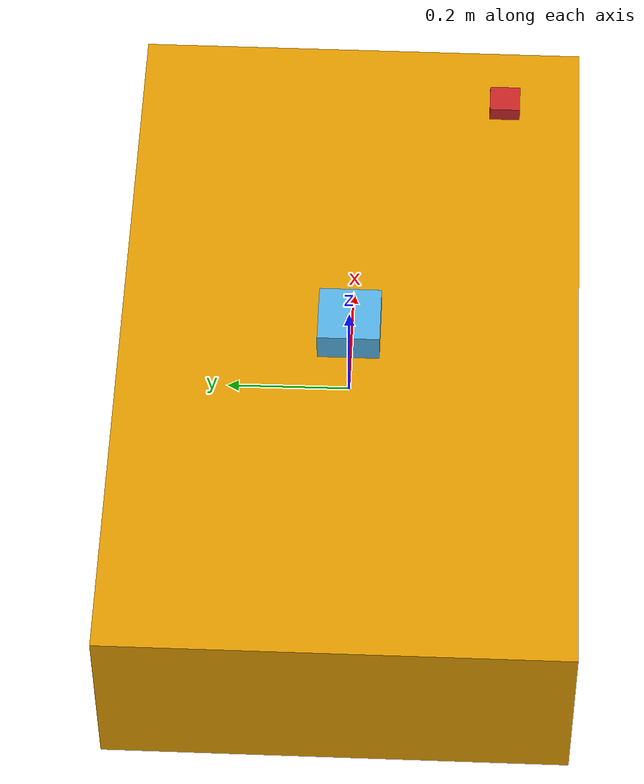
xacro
<?xml version="1.0"?>
<robot name="imarc" xmlns:xacro="http://www.ros.org/wiki/xacro">

<xacro:property name="namespace" value="imarc"/>

<!-- mass in kg, volume in m^3 123.225, -->
<xacro:property name="mass" value="123.225"/>
<xacro:property name="volume" value="0.274"/>
<xacro:property name="pi" value="3.1415926535897931"/>
<xacro:property name="length" value="1.219"/>
<xacro:property name="width" value="0.737"/>
<xacro:property name="depth" value="0.3048"/>

<xacro:property name="camera_link" value="0.05" /> <!-- Size of square 'camera' box -->

<xacro:include filename="$(find imarc_description)/urdf/imarc.gazebo"/>

<!-- TODO: maybe calc center of buoyancy -->

	<link name="body">
		<visual name="body_visual">
			<origin xyz="0 0 0" rpy="0 0 0"/>
			<geometry>
				<box size="${length} ${width} ${depth}"/>
			</geometry>
		</visual>

		<collision name="body_collision">
			<origin xyz="0 0 0" rpy="0 0 0"/>
			<geometry>
				<box size="${length} ${width} ${depth}"/>
			</geometry>
		</collision>

		<inertial>
		<origin xyz="0 0 0" rpy="0 0 0"/>
		<mass value="${mass}"/>
		<inertia ixx="${(width*width + depth*depth)*mass/12.0 }"  ixy="0"  ixz="0" iyy="${(length*length + depth*depth)*mass/12.0}" iyz="0" izz="${(length*length + depth*depth)*mass/12.0}"/>
		</inertial>
	</link>

  <joint name="hokuyo_joint" type="fixed">
    <axis xyz="0 1 0" />
    <origin xyz="0 0 ${depth*0.5}" rpy="0 0 0"/>
    <parent link="body"/>
    <child link="laser_frame"/>
  </joint>

<!-- Hokuyo Laser -->
<link name="laser_frame">
	<collision>
	  <origin xyz="0 0 0" rpy="0 0 0"/>
	  <geometry>
	    <box size="0.1 0.1 0.1"/>
	  </geometry>
	</collision>

	<visual>
	  <origin xyz="0 0 0" rpy="0 0 0"/>
	  <geometry>
	    <box size="0.1 0.1 0.1"/>
	  </geometry>
	</visual>

	<inertial>
	  <mass value="1e-5" />
	  <origin xyz="0 0 0" rpy="0 0 0"/>
	  <inertia ixx="1e-6" ixy="0" ixz="0" iyy="1e-6" iyz="0" izz="1e-6"/>
	</inertial>
</link>

  <joint name="camera_joint" type="fixed">
    <axis xyz="0 1 0" />
	<origin xyz="${length*0.4} ${-width*0.33} ${depth*0.5}" rpy="0 0 0"/>
    <parent link="body"/>
    <child link="camera_link"/>
  </joint>

  <!-- Camera -->
  <link name="camera_link">
    <collision name="camera_collision">
      <origin xyz="0 0 0" rpy="0 0 0"/>
      <geometry>
		<box size="${camera_link} ${camera_link} ${camera_link}"/>
      </geometry>
    </collision>

    <visual>
      <origin xyz="0 0 0" rpy="0 0 0"/>
      <geometry>
    <box size="${camera_link} ${camera_link} ${camera_link}"/>
      </geometry>
      <material name="red"/>
    </visual>

    <inertial>
      <mass value="1e-5" />
      <origin xyz="0 0 0" rpy="0 0 0"/>
      <inertia ixx="1e-6" ixy="0" ixz="0" iyy="1e-6" iyz="0" izz="1e-6" />
    </inertial>
  </link>

  <!-- generate an optical frame http://www.ros.org/reps/rep-0103.html#suffix-frames
      so that ros and opencv can operate on the camera frame correctly -->
  <joint name="camera_optical_joint" type="fixed">
    <!-- these values have to be these values otherwise the gazebo camera image
        won't be aligned properly with the frame it is supposedly originating from -->
    <origin xyz="0 0 0" rpy="${-pi/2} 0 ${-pi/2}"/>
    <parent link="camera_link"/>
    <child link="camera_link_optical"/>
  </joint>

  <link name="camera_link_optical">
  </link>

</robot>
